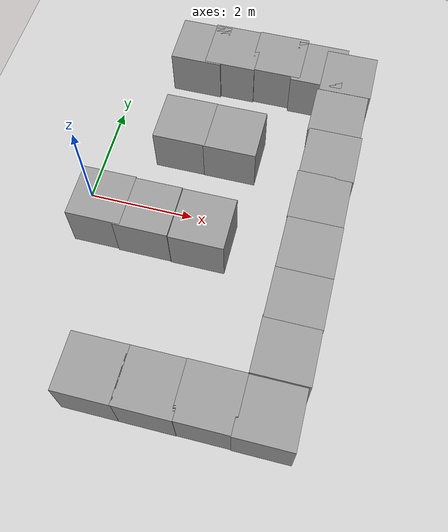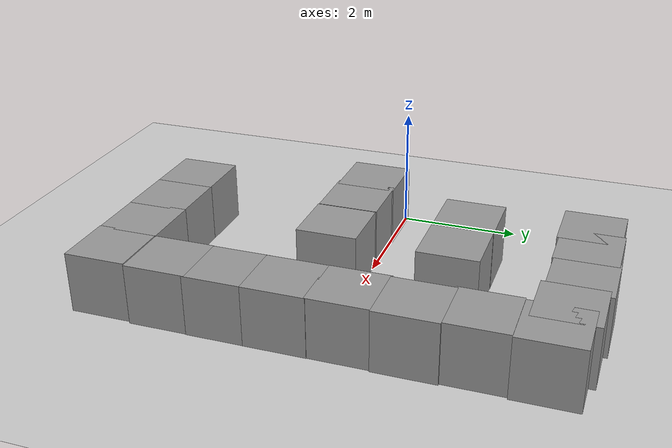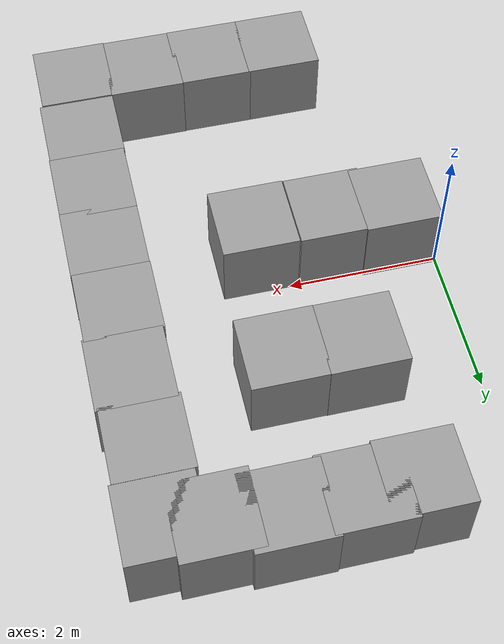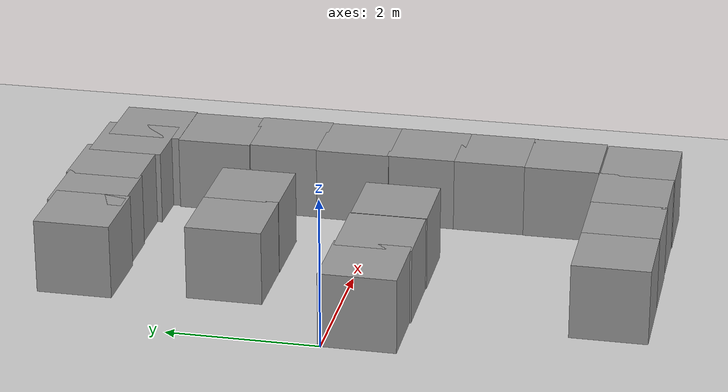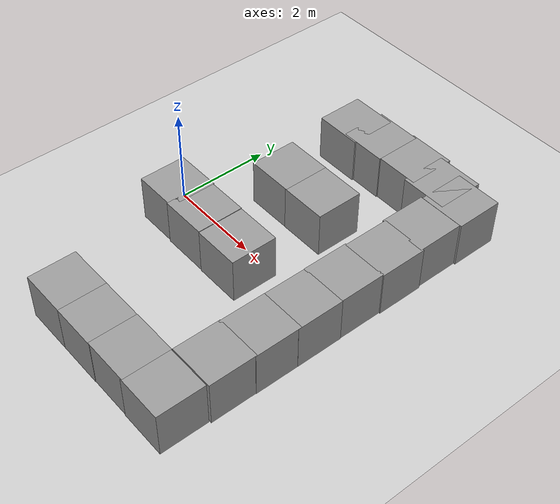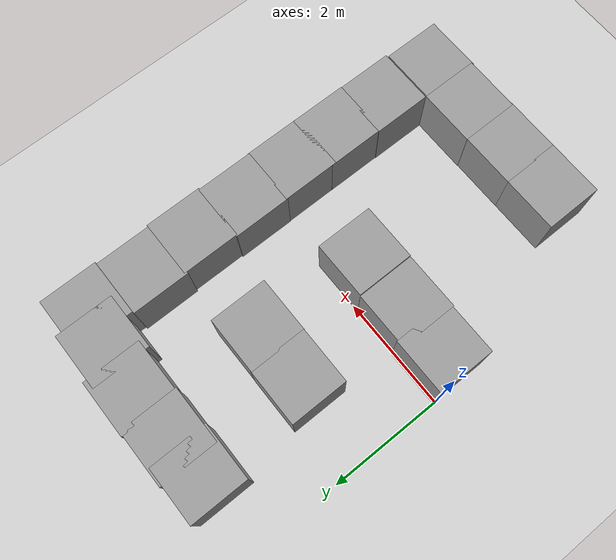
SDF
<sdf version="1.7">
 <world name="default">
  <model name="ground_plane">
   <static>1</static>
   <link name="link">
    <collision name="collision">
     <geometry><plane><normal>0 0 1</normal><size>100 100</size></plane></geometry>
     <surface><friction><ode><mu>100</mu><mu2>50</mu2></ode></friction></surface>
    </collision>
    <visual name="visual">
     <cast_shadows>0</cast_shadows>
     <geometry><plane><normal>0 0 1</normal><size>100 100</size></plane></geometry>
     <material>
      <script><uri>file://media/materials/scripts/gazebo.material</uri><name>Gazebo/Grey</name></script>
     </material>
    </visual>
   </link>
  </model>
  <model name="turtlebot3_world">
   <link name="link_4_clone_10">
    <inertial>
     <mass>1</mass>
     <inertia>
      <ixx>0.166667</ixx>
      <ixy>0</ixy>
      <ixz>0</ixz>
      <iyy>0.166667</iyy>
      <iyz>0</iyz>
      <izz>0.166667</izz>
     </inertia>
    </inertial>
    <pose>1.31695 3.4392 0.5 0 -0 0</pose>
    <visual name="visual">
     <geometry><box><size>1 1 1</size></box></geometry>
     <material>
      <lighting>1</lighting>
      <script><uri>file://media/materials/scripts/gazebo.material</uri><name>Gazebo/Grey</name></script>
      <shader type="pixel"/>
     </material>
    </visual>
    <collision name="collision">
     <geometry><box><size>1 1 1</size></box></geometry>
     <surface>
      <friction>
       <ode><mu>1</mu><mu2>1</mu2><fdir1>0 0 0</fdir1><slip1>0</slip1><slip2>0</slip2></ode>
       <torsional>
        <coefficient>1</coefficient>
        <patch_radius>0</patch_radius>
        <surface_radius>0</surface_radius>
        <use_patch_radius>1</use_patch_radius>
        <ode><slip>0</slip></ode>
       </torsional>
      </friction>
      <bounce><restitution_coefficient>0</restitution_coefficient><threshold>1e+06</threshold></bounce>
      <contact>
       <collide_without_contact>0</collide_without_contact>
       <collide_without_contact_bitmask>1</collide_without_contact_bitmask>
       <collide_bitmask>1</collide_bitmask>
       <ode>
        <soft_cfm>0</soft_cfm>
        <soft_erp>0.2</soft_erp>
        <kp>1e+13</kp>
        <kd>1</kd>
        <max_vel>0.01</max_vel>
        <min_depth>0</min_depth>
       </ode>
       <bullet>
        <split_impulse>1</split_impulse>
        <split_impulse_penetration_threshold>-0.01</split_impulse_penetration_threshold>
        <soft_cfm>0</soft_cfm>
        <soft_erp>0.2</soft_erp>
        <kp>1e+13</kp>
        <kd>1</kd>
       </bullet>
      </contact>
     </surface>
    </collision>
   </link>
   <link name="link_4_clone_11">
    <inertial>
     <mass>1</mass>
     <inertia>
      <ixx>0.166667</ixx>
      <ixy>0</ixy>
      <ixz>0</ixz>
      <iyy>0.166667</iyy>
      <iyz>0</iyz>
      <izz>0.166667</izz>
     </inertia>
    </inertial>
    <pose>2.00157 3.47266 0.5 0 -0 0</pose>
    <visual name="visual">
     <geometry><box><size>1 1 1</size></box></geometry>
     <material>
      <lighting>1</lighting>
      <script><uri>file://media/materials/scripts/gazebo.material</uri><name>Gazebo/Grey</name></script>
      <shader type="pixel"/>
     </material>
    </visual>
    <collision name="collision">
     <geometry><box><size>1 1 1</size></box></geometry>
     <surface>
      <friction>
       <ode><mu>1</mu><mu2>1</mu2><fdir1>0 0 0</fdir1><slip1>0</slip1><slip2>0</slip2></ode>
       <torsional>
        <coefficient>1</coefficient>
        <patch_radius>0</patch_radius>
        <surface_radius>0</surface_radius>
        <use_patch_radius>1</use_patch_radius>
        <ode><slip>0</slip></ode>
       </torsional>
      </friction>
      <bounce><restitution_coefficient>0</restitution_coefficient><threshold>1e+06</threshold></bounce>
      <contact>
       <collide_without_contact>0</collide_without_contact>
       <collide_without_contact_bitmask>1</collide_without_contact_bitmask>
       <collide_bitmask>1</collide_bitmask>
       <ode>
        <soft_cfm>0</soft_cfm>
        <soft_erp>0.2</soft_erp>
        <kp>1e+13</kp>
        <kd>1</kd>
        <max_vel>0.01</max_vel>
        <min_depth>0</min_depth>
       </ode>
       <bullet>
        <split_impulse>1</split_impulse>
        <split_impulse_penetration_threshold>-0.01</split_impulse_penetration_threshold>
        <soft_cfm>0</soft_cfm>
        <soft_erp>0.2</soft_erp>
        <kp>1e+13</kp>
        <kd>1</kd>
       </bullet>
      </contact>
     </surface>
    </collision>
   </link>
   <link name="link_4_clone_12">
    <inertial>
     <mass>1</mass>
     <inertia>
      <ixx>0.166667</ixx>
      <ixy>0</ixy>
      <ixz>0</ixz>
      <iyy>0.166667</iyy>
      <iyz>0</iyz>
      <izz>0.166667</izz>
     </inertia>
    </inertial>
    <pose>2.91323 3.4956 0.5 0 -0 0</pose>
    <visual name="visual">
     <geometry><box><size>1 1 1</size></box></geometry>
     <material>
      <lighting>1</lighting>
      <script><uri>file://media/materials/scripts/gazebo.material</uri><name>Gazebo/Grey</name></script>
      <shader type="pixel"/>
     </material>
    </visual>
    <collision name="collision">
     <geometry><box><size>1 1 1</size></box></geometry>
     <surface>
      <friction>
       <ode><mu>1</mu><mu2>1</mu2><fdir1>0 0 0</fdir1><slip1>0</slip1><slip2>0</slip2></ode>
       <torsional>
        <coefficient>1</coefficient>
        <patch_radius>0</patch_radius>
        <surface_radius>0</surface_radius>
        <use_patch_radius>1</use_patch_radius>
        <ode><slip>0</slip></ode>
       </torsional>
      </friction>
      <bounce><restitution_coefficient>0</restitution_coefficient><threshold>1e+06</threshold></bounce>
      <contact>
       <collide_without_contact>0</collide_without_contact>
       <collide_without_contact_bitmask>1</collide_without_contact_bitmask>
       <collide_bitmask>1</collide_bitmask>
       <ode>
        <soft_cfm>0</soft_cfm>
        <soft_erp>0.2</soft_erp>
        <kp>1e+13</kp>
        <kd>1</kd>
        <max_vel>0.01</max_vel>
        <min_depth>0</min_depth>
       </ode>
       <bullet>
        <split_impulse>1</split_impulse>
        <split_impulse_penetration_threshold>-0.01</split_impulse_penetration_threshold>
        <soft_cfm>0</soft_cfm>
        <soft_erp>0.2</soft_erp>
        <kp>1e+13</kp>
        <kd>1</kd>
       </bullet>
      </contact>
     </surface>
    </collision>
   </link>
   <link name="link_4_clone_17">
    <inertial>
     <mass>1</mass>
     <inertia>
      <ixx>0.166667</ixx>
      <ixy>0</ixy>
      <ixz>0</ixz>
      <iyy>0.166667</iyy>
      <iyz>0</iyz>
      <izz>0.166667</izz>
     </inertia>
    </inertial>
    <pose>1.36667 -3.48701 0.5 0 -0 0</pose>
    <visual name="visual">
     <geometry><box><size>1 1 1</size></box></geometry>
     <material>
      <lighting>1</lighting>
      <script><uri>file://media/materials/scripts/gazebo.material</uri><name>Gazebo/Grey</name></script>
      <shader type="pixel"/>
     </material>
    </visual>
    <collision name="collision">
     <geometry><box><size>1 1 1</size></box></geometry>
     <surface>
      <friction>
       <ode><mu>1</mu><mu2>1</mu2><fdir1>0 0 0</fdir1><slip1>0</slip1><slip2>0</slip2></ode>
       <torsional>
        <coefficient>1</coefficient>
        <patch_radius>0</patch_radius>
        <surface_radius>0</surface_radius>
        <use_patch_radius>1</use_patch_radius>
        <ode><slip>0</slip></ode>
       </torsional>
      </friction>
      <bounce><restitution_coefficient>0</restitution_coefficient><threshold>1e+06</threshold></bounce>
      <contact>
       <collide_without_contact>0</collide_without_contact>
       <collide_without_contact_bitmask>1</collide_without_contact_bitmask>
       <collide_bitmask>1</collide_bitmask>
       <ode>
        <soft_cfm>0</soft_cfm>
        <soft_erp>0.2</soft_erp>
        <kp>1e+13</kp>
        <kd>1</kd>
        <max_vel>0.01</max_vel>
        <min_depth>0</min_depth>
       </ode>
       <bullet>
        <split_impulse>1</split_impulse>
        <split_impulse_penetration_threshold>-0.01</split_impulse_penetration_threshold>
        <soft_cfm>0</soft_cfm>
        <soft_erp>0.2</soft_erp>
        <kp>1e+13</kp>
        <kd>1</kd>
       </bullet>
      </contact>
     </surface>
    </collision>
   </link>
   <link name="link_4_clone_18">
    <inertial>
     <mass>1</mass>
     <inertia>
      <ixx>0.166667</ixx>
      <ixy>0</ixy>
      <ixz>0</ixz>
      <iyy>0.166667</iyy>
      <iyz>0</iyz>
      <izz>0.166667</izz>
     </inertia>
    </inertial>
    <pose>2.34696 -3.48647 0.5 0 -0 0</pose>
    <visual name="visual">
     <geometry><box><size>1 1 1</size></box></geometry>
     <material>
      <lighting>1</lighting>
      <script><uri>file://media/materials/scripts/gazebo.material</uri><name>Gazebo/Grey</name></script>
      <shader type="pixel"/>
     </material>
    </visual>
    <collision name="collision">
     <geometry><box><size>1 1 1</size></box></geometry>
     <surface>
      <friction>
       <ode><mu>1</mu><mu2>1</mu2><fdir1>0 0 0</fdir1><slip1>0</slip1><slip2>0</slip2></ode>
       <torsional>
        <coefficient>1</coefficient>
        <patch_radius>0</patch_radius>
        <surface_radius>0</surface_radius>
        <use_patch_radius>1</use_patch_radius>
        <ode><slip>0</slip></ode>
       </torsional>
      </friction>
      <bounce><restitution_coefficient>0</restitution_coefficient><threshold>1e+06</threshold></bounce>
      <contact>
       <collide_without_contact>0</collide_without_contact>
       <collide_without_contact_bitmask>1</collide_without_contact_bitmask>
       <collide_bitmask>1</collide_bitmask>
       <ode>
        <soft_cfm>0</soft_cfm>
        <soft_erp>0.2</soft_erp>
        <kp>1e+13</kp>
        <kd>1</kd>
        <max_vel>0.01</max_vel>
        <min_depth>0</min_depth>
       </ode>
       <bullet>
        <split_impulse>1</split_impulse>
        <split_impulse_penetration_threshold>-0.01</split_impulse_penetration_threshold>
        <soft_cfm>0</soft_cfm>
        <soft_erp>0.2</soft_erp>
        <kp>1e+13</kp>
        <kd>1</kd>
       </bullet>
      </contact>
     </surface>
    </collision>
   </link>
   <link name="link_4_clone_19">
    <inertial>
     <mass>1</mass>
     <inertia>
      <ixx>0.166667</ixx>
      <ixy>0</ixy>
      <ixz>0</ixz>
      <iyy>0.166667</iyy>
      <iyz>0</iyz>
      <izz>0.166667</izz>
     </inertia>
    </inertial>
    <pose>3.30228 -3.48091 0.5 0 -0 0</pose>
    <visual name="visual">
     <geometry><box><size>1 1 1</size></box></geometry>
     <material>
      <lighting>1</lighting>
      <script><uri>file://media/materials/scripts/gazebo.material</uri><name>Gazebo/Grey</name></script>
      <shader type="pixel"/>
     </material>
    </visual>
    <collision name="collision">
     <geometry><box><size>1 1 1</size></box></geometry>
     <surface>
      <friction>
       <ode><mu>1</mu><mu2>1</mu2><fdir1>0 0 0</fdir1><slip1>0</slip1><slip2>0</slip2></ode>
       <torsional>
        <coefficient>1</coefficient>
        <patch_radius>0</patch_radius>
        <surface_radius>0</surface_radius>
        <use_patch_radius>1</use_patch_radius>
        <ode><slip>0</slip></ode>
       </torsional>
      </friction>
      <bounce><restitution_coefficient>0</restitution_coefficient><threshold>1e+06</threshold></bounce>
      <contact>
       <collide_without_contact>0</collide_without_contact>
       <collide_without_contact_bitmask>1</collide_without_contact_bitmask>
       <collide_bitmask>1</collide_bitmask>
       <ode>
        <soft_cfm>0</soft_cfm>
        <soft_erp>0.2</soft_erp>
        <kp>1e+13</kp>
        <kd>1</kd>
        <max_vel>0.01</max_vel>
        <min_depth>0</min_depth>
       </ode>
       <bullet>
        <split_impulse>1</split_impulse>
        <split_impulse_penetration_threshold>-0.01</split_impulse_penetration_threshold>
        <soft_cfm>0</soft_cfm>
        <soft_erp>0.2</soft_erp>
        <kp>1e+13</kp>
        <kd>1</kd>
       </bullet>
      </contact>
     </surface>
    </collision>
   </link>
   <link name="link_4_clone_20">
    <inertial>
     <mass>1</mass>
     <inertia>
      <ixx>0.166667</ixx>
      <ixy>0</ixy>
      <ixz>0</ixz>
      <iyy>0.166667</iyy>
      <iyz>0</iyz>
      <izz>0.166667</izz>
     </inertia>
    </inertial>
    <pose>4.26068 -3.49093 0.5 0 -0 0</pose>
    <visual name="visual">
     <geometry><box><size>1 1 1</size></box></geometry>
     <material>
      <lighting>1</lighting>
      <script><uri>file://media/materials/scripts/gazebo.material</uri><name>Gazebo/Grey</name></script>
      <shader type="pixel"/>
     </material>
    </visual>
    <collision name="collision">
     <geometry><box><size>1 1 1</size></box></geometry>
     <surface>
      <friction>
       <ode><mu>1</mu><mu2>1</mu2><fdir1>0 0 0</fdir1><slip1>0</slip1><slip2>0</slip2></ode>
       <torsional>
        <coefficient>1</coefficient>
        <patch_radius>0</patch_radius>
        <surface_radius>0</surface_radius>
        <use_patch_radius>1</use_patch_radius>
        <ode><slip>0</slip></ode>
       </torsional>
      </friction>
      <bounce><restitution_coefficient>0</restitution_coefficient><threshold>1e+06</threshold></bounce>
      <contact>
       <collide_without_contact>0</collide_without_contact>
       <collide_without_contact_bitmask>1</collide_without_contact_bitmask>
       <collide_bitmask>1</collide_bitmask>
       <ode>
        <soft_cfm>0</soft_cfm>
        <soft_erp>0.2</soft_erp>
        <kp>1e+13</kp>
        <kd>1</kd>
        <max_vel>0.01</max_vel>
        <min_depth>0</min_depth>
       </ode>
       <bullet>
        <split_impulse>1</split_impulse>
        <split_impulse_penetration_threshold>-0.01</split_impulse_penetration_threshold>
        <soft_cfm>0</soft_cfm>
        <soft_erp>0.2</soft_erp>
        <kp>1e+13</kp>
        <kd>1</kd>
       </bullet>
      </contact>
     </surface>
    </collision>
   </link>
   <link name="link_4_clone_21">
    <inertial>
     <mass>1</mass>
     <inertia>
      <ixx>0.166667</ixx>
      <ixy>0</ixy>
      <ixz>0</ixz>
      <iyy>0.166667</iyy>
      <iyz>0</iyz>
      <izz>0.166667</izz>
     </inertia>
    </inertial>
    <pose>4.29918 -2.47182 0.5 0 -0 0</pose>
    <visual name="visual">
     <geometry><box><size>1 1 1</size></box></geometry>
     <material>
      <lighting>1</lighting>
      <script><uri>file://media/materials/scripts/gazebo.material</uri><name>Gazebo/Grey</name></script>
      <shader type="pixel"/>
     </material>
    </visual>
    <collision name="collision">
     <geometry><box><size>1 1 1</size></box></geometry>
     <surface>
      <friction>
       <ode><mu>1</mu><mu2>1</mu2><fdir1>0 0 0</fdir1><slip1>0</slip1><slip2>0</slip2></ode>
       <torsional>
        <coefficient>1</coefficient>
        <patch_radius>0</patch_radius>
        <surface_radius>0</surface_radius>
        <use_patch_radius>1</use_patch_radius>
        <ode><slip>0</slip></ode>
       </torsional>
      </friction>
      <bounce><restitution_coefficient>0</restitution_coefficient><threshold>1e+06</threshold></bounce>
      <contact>
       <collide_without_contact>0</collide_without_contact>
       <collide_without_contact_bitmask>1</collide_without_contact_bitmask>
       <collide_bitmask>1</collide_bitmask>
       <ode>
        <soft_cfm>0</soft_cfm>
        <soft_erp>0.2</soft_erp>
        <kp>1e+13</kp>
        <kd>1</kd>
        <max_vel>0.01</max_vel>
        <min_depth>0</min_depth>
       </ode>
       <bullet>
        <split_impulse>1</split_impulse>
        <split_impulse_penetration_threshold>-0.01</split_impulse_penetration_threshold>
        <soft_cfm>0</soft_cfm>
        <soft_erp>0.2</soft_erp>
        <kp>1e+13</kp>
        <kd>1</kd>
       </bullet>
      </contact>
     </surface>
    </collision>
   </link>
   <link name="link_4_clone_22">
    <inertial>
     <mass>1</mass>
     <inertia>
      <ixx>0.166667</ixx>
      <ixy>0</ixy>
      <ixz>0</ixz>
      <iyy>0.166667</iyy>
      <iyz>0</iyz>
      <izz>0.166667</izz>
     </inertia>
    </inertial>
    <pose>4.3084 -1.51402 0.5 0 -0 0</pose>
    <visual name="visual">
     <geometry><box><size>1 1 1</size></box></geometry>
     <material>
      <lighting>1</lighting>
      <script><uri>file://media/materials/scripts/gazebo.material</uri><name>Gazebo/Grey</name></script>
      <shader type="pixel"/>
     </material>
    </visual>
    <collision name="collision">
     <geometry><box><size>1 1 1</size></box></geometry>
     <surface>
      <friction>
       <ode><mu>1</mu><mu2>1</mu2><fdir1>0 0 0</fdir1><slip1>0</slip1><slip2>0</slip2></ode>
       <torsional>
        <coefficient>1</coefficient>
        <patch_radius>0</patch_radius>
        <surface_radius>0</surface_radius>
        <use_patch_radius>1</use_patch_radius>
        <ode><slip>0</slip></ode>
       </torsional>
      </friction>
      <bounce><restitution_coefficient>0</restitution_coefficient><threshold>1e+06</threshold></bounce>
      <contact>
       <collide_without_contact>0</collide_without_contact>
       <collide_without_contact_bitmask>1</collide_without_contact_bitmask>
       <collide_bitmask>1</collide_bitmask>
       <ode>
        <soft_cfm>0</soft_cfm>
        <soft_erp>0.2</soft_erp>
        <kp>1e+13</kp>
        <kd>1</kd>
        <max_vel>0.01</max_vel>
        <min_depth>0</min_depth>
       </ode>
       <bullet>
        <split_impulse>1</split_impulse>
        <split_impulse_penetration_threshold>-0.01</split_impulse_penetration_threshold>
        <soft_cfm>0</soft_cfm>
        <soft_erp>0.2</soft_erp>
        <kp>1e+13</kp>
        <kd>1</kd>
       </bullet>
      </contact>
     </surface>
    </collision>
   </link>
   <link name="link_4_clone_23">
    <inertial>
     <mass>1</mass>
     <inertia>
      <ixx>0.166667</ixx>
      <ixy>0</ixy>
      <ixz>0</ixz>
      <iyy>0.166667</iyy>
      <iyz>0</iyz>
      <izz>0.166667</izz>
     </inertia>
    </inertial>
    <pose>4.31032 -0.590382 0.5 0 -0 0</pose>
    <visual name="visual">
     <geometry><box><size>1 1 1</size></box></geometry>
     <material>
      <lighting>1</lighting>
      <script><uri>file://media/materials/scripts/gazebo.material</uri><name>Gazebo/Grey</name></script>
      <shader type="pixel"/>
     </material>
    </visual>
    <collision name="collision">
     <geometry><box><size>1 1 1</size></box></geometry>
     <surface>
      <friction>
       <ode><mu>1</mu><mu2>1</mu2><fdir1>0 0 0</fdir1><slip1>0</slip1><slip2>0</slip2></ode>
       <torsional>
        <coefficient>1</coefficient>
        <patch_radius>0</patch_radius>
        <surface_radius>0</surface_radius>
        <use_patch_radius>1</use_patch_radius>
        <ode><slip>0</slip></ode>
       </torsional>
      </friction>
      <bounce><restitution_coefficient>0</restitution_coefficient><threshold>1e+06</threshold></bounce>
      <contact>
       <collide_without_contact>0</collide_without_contact>
       <collide_without_contact_bitmask>1</collide_without_contact_bitmask>
       <collide_bitmask>1</collide_bitmask>
       <ode>
        <soft_cfm>0</soft_cfm>
        <soft_erp>0.2</soft_erp>
        <kp>1e+13</kp>
        <kd>1</kd>
        <max_vel>0.01</max_vel>
        <min_depth>0</min_depth>
       </ode>
       <bullet>
        <split_impulse>1</split_impulse>
        <split_impulse_penetration_threshold>-0.01</split_impulse_penetration_threshold>
        <soft_cfm>0</soft_cfm>
        <soft_erp>0.2</soft_erp>
        <kp>1e+13</kp>
        <kd>1</kd>
       </bullet>
      </contact>
     </surface>
    </collision>
   </link>
   <link name="link_4_clone_24">
    <inertial>
     <mass>1</mass>
     <inertia>
      <ixx>0.166667</ixx>
      <ixy>0</ixy>
      <ixz>0</ixz>
      <iyy>0.166667</iyy>
      <iyz>0</iyz>
      <izz>0.166667</izz>
     </inertia>
    </inertial>
    <pose>4.30342 0.387083 0.5 0 -0 0</pose>
    <visual name="visual">
     <geometry><box><size>1 1 1</size></box></geometry>
     <material>
      <lighting>1</lighting>
      <script><uri>file://media/materials/scripts/gazebo.material</uri><name>Gazebo/Grey</name></script>
      <shader type="pixel"/>
     </material>
    </visual>
    <collision name="collision">
     <geometry><box><size>1 1 1</size></box></geometry>
     <surface>
      <friction>
       <ode><mu>1</mu><mu2>1</mu2><fdir1>0 0 0</fdir1><slip1>0</slip1><slip2>0</slip2></ode>
       <torsional>
        <coefficient>1</coefficient>
        <patch_radius>0</patch_radius>
        <surface_radius>0</surface_radius>
        <use_patch_radius>1</use_patch_radius>
        <ode><slip>0</slip></ode>
       </torsional>
      </friction>
      <bounce><restitution_coefficient>0</restitution_coefficient><threshold>1e+06</threshold></bounce>
      <contact>
       <collide_without_contact>0</collide_without_contact>
       <collide_without_contact_bitmask>1</collide_without_contact_bitmask>
       <collide_bitmask>1</collide_bitmask>
       <ode>
        <soft_cfm>0</soft_cfm>
        <soft_erp>0.2</soft_erp>
        <kp>1e+13</kp>
        <kd>1</kd>
        <max_vel>0.01</max_vel>
        <min_depth>0</min_depth>
       </ode>
       <bullet>
        <split_impulse>1</split_impulse>
        <split_impulse_penetration_threshold>-0.01</split_impulse_penetration_threshold>
        <soft_cfm>0</soft_cfm>
        <soft_erp>0.2</soft_erp>
        <kp>1e+13</kp>
        <kd>1</kd>
       </bullet>
      </contact>
     </surface>
    </collision>
   </link>
   <link name="link_4_clone_25">
    <inertial>
     <mass>1</mass>
     <inertia>
      <ixx>0.166667</ixx>
      <ixy>0</ixy>
      <ixz>0</ixz>
      <iyy>0.166667</iyy>
      <iyz>0</iyz>
      <izz>0.166667</izz>
     </inertia>
    </inertial>
    <pose>4.32632 1.36261 0.5 0 -0 0</pose>
    <visual name="visual">
     <geometry><box><size>1 1 1</size></box></geometry>
     <material>
      <lighting>1</lighting>
      <script><uri>file://media/materials/scripts/gazebo.material</uri><name>Gazebo/Grey</name></script>
      <shader type="pixel"/>
     </material>
    </visual>
    <collision name="collision">
     <geometry><box><size>1 1 1</size></box></geometry>
     <surface>
      <friction>
       <ode><mu>1</mu><mu2>1</mu2><fdir1>0 0 0</fdir1><slip1>0</slip1><slip2>0</slip2></ode>
       <torsional>
        <coefficient>1</coefficient>
        <patch_radius>0</patch_radius>
        <surface_radius>0</surface_radius>
        <use_patch_radius>1</use_patch_radius>
        <ode><slip>0</slip></ode>
       </torsional>
      </friction>
      <bounce><restitution_coefficient>0</restitution_coefficient><threshold>1e+06</threshold></bounce>
      <contact>
       <collide_without_contact>0</collide_without_contact>
       <collide_without_contact_bitmask>1</collide_without_contact_bitmask>
       <collide_bitmask>1</collide_bitmask>
       <ode>
        <soft_cfm>0</soft_cfm>
        <soft_erp>0.2</soft_erp>
        <kp>1e+13</kp>
        <kd>1</kd>
        <max_vel>0.01</max_vel>
        <min_depth>0</min_depth>
       </ode>
       <bullet>
        <split_impulse>1</split_impulse>
        <split_impulse_penetration_threshold>-0.01</split_impulse_penetration_threshold>
        <soft_cfm>0</soft_cfm>
        <soft_erp>0.2</soft_erp>
        <kp>1e+13</kp>
        <kd>1</kd>
       </bullet>
      </contact>
     </surface>
    </collision>
   </link>
   <link name="link_4_clone_26">
    <inertial>
     <mass>1</mass>
     <inertia>
      <ixx>0.166667</ixx>
      <ixy>0</ixy>
      <ixz>0</ixz>
      <iyy>0.166667</iyy>
      <iyz>0</iyz>
      <izz>0.166667</izz>
     </inertia>
    </inertial>
    <pose>4.29655 2.31945 0.5 0 -0 0</pose>
    <visual name="visual">
     <geometry><box><size>1 1 1</size></box></geometry>
     <material>
      <lighting>1</lighting>
      <script><uri>file://media/materials/scripts/gazebo.material</uri><name>Gazebo/Grey</name></script>
      <shader type="pixel"/>
     </material>
    </visual>
    <collision name="collision">
     <geometry><box><size>1 1 1</size></box></geometry>
     <surface>
      <friction>
       <ode><mu>1</mu><mu2>1</mu2><fdir1>0 0 0</fdir1><slip1>0</slip1><slip2>0</slip2></ode>
       <torsional>
        <coefficient>1</coefficient>
        <patch_radius>0</patch_radius>
        <surface_radius>0</surface_radius>
        <use_patch_radius>1</use_patch_radius>
        <ode><slip>0</slip></ode>
       </torsional>
      </friction>
      <bounce><restitution_coefficient>0</restitution_coefficient><threshold>1e+06</threshold></bounce>
      <contact>
       <collide_without_contact>0</collide_without_contact>
       <collide_without_contact_bitmask>1</collide_without_contact_bitmask>
       <collide_bitmask>1</collide_bitmask>
       <ode>
        <soft_cfm>0</soft_cfm>
        <soft_erp>0.2</soft_erp>
        <kp>1e+13</kp>
        <kd>1</kd>
        <max_vel>0.01</max_vel>
        <min_depth>0</min_depth>
       </ode>
       <bullet>
        <split_impulse>1</split_impulse>
        <split_impulse_penetration_threshold>-0.01</split_impulse_penetration_threshold>
        <soft_cfm>0</soft_cfm>
        <soft_erp>0.2</soft_erp>
        <kp>1e+13</kp>
        <kd>1</kd>
       </bullet>
      </contact>
     </surface>
    </collision>
   </link>
   <link name="link_4_clone_27">
    <inertial>
     <mass>1</mass>
     <inertia>
      <ixx>0.166667</ixx>
      <ixy>0</ixy>
      <ixz>0</ixz>
      <iyy>0.166667</iyy>
      <iyz>0</iyz>
      <izz>0.166667</izz>
     </inertia>
    </inertial>
    <pose>4.33093 3.32099 0.5 0 -0 0</pose>
    <visual name="visual">
     <geometry><box><size>1 1 1</size></box></geometry>
     <material>
      <lighting>1</lighting>
      <script><uri>file://media/materials/scripts/gazebo.material</uri><name>Gazebo/Grey</name></script>
      <shader type="pixel"/>
     </material>
    </visual>
    <collision name="collision">
     <geometry><box><size>1 1 1</size></box></geometry>
     <surface>
      <friction>
       <ode><mu>1</mu><mu2>1</mu2><fdir1>0 0 0</fdir1><slip1>0</slip1><slip2>0</slip2></ode>
       <torsional>
        <coefficient>1</coefficient>
        <patch_radius>0</patch_radius>
        <surface_radius>0</surface_radius>
        <use_patch_radius>1</use_patch_radius>
        <ode><slip>0</slip></ode>
       </torsional>
      </friction>
      <bounce><restitution_coefficient>0</restitution_coefficient><threshold>1e+06</threshold></bounce>
      <contact>
       <collide_without_contact>0</collide_without_contact>
       <collide_without_contact_bitmask>1</collide_without_contact_bitmask>
       <collide_bitmask>1</collide_bitmask>
       <ode>
        <soft_cfm>0</soft_cfm>
        <soft_erp>0.2</soft_erp>
        <kp>1e+13</kp>
        <kd>1</kd>
        <max_vel>0.01</max_vel>
        <min_depth>0</min_depth>
       </ode>
       <bullet>
        <split_impulse>1</split_impulse>
        <split_impulse_penetration_threshold>-0.01</split_impulse_penetration_threshold>
        <soft_cfm>0</soft_cfm>
        <soft_erp>0.2</soft_erp>
        <kp>1e+13</kp>
        <kd>1</kd>
       </bullet>
      </contact>
     </surface>
    </collision>
   </link>
   <link name="link_4_clone_28">
    <inertial>
     <mass>1</mass>
     <inertia>
      <ixx>0.166667</ixx>
      <ixy>0</ixy>
      <ixz>0</ixz>
      <iyy>0.166667</iyy>
      <iyz>0</iyz>
      <izz>0.166667</izz>
     </inertia>
    </inertial>
    <pose>3.74082 3.42766 0.5 0 -0 0</pose>
    <visual name="visual">
     <geometry><box><size>1 1 1</size></box></geometry>
     <material>
      <lighting>1</lighting>
      <script><uri>file://media/materials/scripts/gazebo.material</uri><name>Gazebo/Grey</name></script>
      <shader type="pixel"/>
     </material>
    </visual>
    <collision name="collision">
     <geometry><box><size>1 1 1</size></box></geometry>
     <surface>
      <friction>
       <ode><mu>1</mu><mu2>1</mu2><fdir1>0 0 0</fdir1><slip1>0</slip1><slip2>0</slip2></ode>
       <torsional>
        <coefficient>1</coefficient>
        <patch_radius>0</patch_radius>
        <surface_radius>0</surface_radius>
        <use_patch_radius>1</use_patch_radius>
        <ode><slip>0</slip></ode>
       </torsional>
      </friction>
      <bounce><restitution_coefficient>0</restitution_coefficient><threshold>1e+06</threshold></bounce>
      <contact>
       <collide_without_contact>0</collide_without_contact>
       <collide_without_contact_bitmask>1</collide_without_contact_bitmask>
       <collide_bitmask>1</collide_bitmask>
       <ode>
        <soft_cfm>0</soft_cfm>
        <soft_erp>0.2</soft_erp>
        <kp>1e+13</kp>
        <kd>1</kd>
        <max_vel>0.01</max_vel>
        <min_depth>0</min_depth>
       </ode>
       <bullet>
        <split_impulse>1</split_impulse>
        <split_impulse_penetration_threshold>-0.01</split_impulse_penetration_threshold>
        <soft_cfm>0</soft_cfm>
        <soft_erp>0.2</soft_erp>
        <kp>1e+13</kp>
        <kd>1</kd>
       </bullet>
      </contact>
     </surface>
    </collision>
   </link>
   <link name="link_4_clone_34">
    <inertial>
     <mass>1</mass>
     <inertia>
      <ixx>0.166667</ixx>
      <ixy>0</ixy>
      <ixz>0</ixz>
      <iyy>0.166667</iyy>
      <iyz>0</iyz>
      <izz>0.166667</izz>
     </inertia>
    </inertial>
    <pose>0.504855 -0.462185 0.5 0 -0 0</pose>
    <visual name="visual">
     <geometry><box><size>1 1 1</size></box></geometry>
     <material>
      <lighting>1</lighting>
      <script><uri>file://media/materials/scripts/gazebo.material</uri><name>Gazebo/Grey</name></script>
      <shader type="pixel"/>
     </material>
    </visual>
    <collision name="collision">
     <geometry><box><size>1 1 1</size></box></geometry>
     <surface>
      <friction>
       <ode><mu>1</mu><mu2>1</mu2><fdir1>0 0 0</fdir1><slip1>0</slip1><slip2>0</slip2></ode>
       <torsional>
        <coefficient>1</coefficient>
        <patch_radius>0</patch_radius>
        <surface_radius>0</surface_radius>
        <use_patch_radius>1</use_patch_radius>
        <ode><slip>0</slip></ode>
       </torsional>
      </friction>
      <bounce><restitution_coefficient>0</restitution_coefficient><threshold>1e+06</threshold></bounce>
      <contact>
       <collide_without_contact>0</collide_without_contact>
       <collide_without_contact_bitmask>1</collide_without_contact_bitmask>
       <collide_bitmask>1</collide_bitmask>
       <ode>
        <soft_cfm>0</soft_cfm>
        <soft_erp>0.2</soft_erp>
        <kp>1e+13</kp>
        <kd>1</kd>
        <max_vel>0.01</max_vel>
        <min_depth>0</min_depth>
       </ode>
       <bullet>
        <split_impulse>1</split_impulse>
        <split_impulse_penetration_threshold>-0.01</split_impulse_penetration_threshold>
        <soft_cfm>0</soft_cfm>
        <soft_erp>0.2</soft_erp>
        <kp>1e+13</kp>
        <kd>1</kd>
       </bullet>
      </contact>
     </surface>
    </collision>
   </link>
   <link name="link_4_clone_35">
    <inertial>
     <mass>1</mass>
     <inertia>
      <ixx>0.166667</ixx>
      <ixy>0</ixy>
      <ixz>0</ixz>
      <iyy>0.166667</iyy>
      <iyz>0</iyz>
      <izz>0.166667</izz>
     </inertia>
    </inertial>
    <pose>1.37565 -0.48214 0.5 0 -0 0</pose>
    <visual name="visual">
     <geometry><box><size>1 1 1</size></box></geometry>
     <material>
      <lighting>1</lighting>
      <script><uri>file://media/materials/scripts/gazebo.material</uri><name>Gazebo/Grey</name></script>
      <shader type="pixel"/>
     </material>
    </visual>
    <collision name="collision">
     <geometry><box><size>1 1 1</size></box></geometry>
     <surface>
      <friction>
       <ode><mu>1</mu><mu2>1</mu2><fdir1>0 0 0</fdir1><slip1>0</slip1><slip2>0</slip2></ode>
       <torsional>
        <coefficient>1</coefficient>
        <patch_radius>0</patch_radius>
        <surface_radius>0</surface_radius>
        <use_patch_radius>1</use_patch_radius>
        <ode><slip>0</slip></ode>
       </torsional>
      </friction>
      <bounce><restitution_coefficient>0</restitution_coefficient><threshold>1e+06</threshold></bounce>
      <contact>
       <collide_without_contact>0</collide_without_contact>
       <collide_without_contact_bitmask>1</collide_without_contact_bitmask>
       <collide_bitmask>1</collide_bitmask>
       <ode>
        <soft_cfm>0</soft_cfm>
        <soft_erp>0.2</soft_erp>
        <kp>1e+13</kp>
        <kd>1</kd>
        <max_vel>0.01</max_vel>
        <min_depth>0</min_depth>
       </ode>
       <bullet>
        <split_impulse>1</split_impulse>
        <split_impulse_penetration_threshold>-0.01</split_impulse_penetration_threshold>
        <soft_cfm>0</soft_cfm>
        <soft_erp>0.2</soft_erp>
        <kp>1e+13</kp>
        <kd>1</kd>
       </bullet>
      </contact>
     </surface>
    </collision>
   </link>
   <link name="link_4_clone_36">
    <inertial>
     <mass>1</mass>
     <inertia>
      <ixx>0.166667</ixx>
      <ixy>0</ixy>
      <ixz>0</ixz>
      <iyy>0.166667</iyy>
      <iyz>0</iyz>
      <izz>0.166667</izz>
     </inertia>
    </inertial>
    <pose>2.38811 -0.493615 0.5 0 -0 0</pose>
    <visual name="visual">
     <geometry><box><size>1 1 1</size></box></geometry>
     <material>
      <lighting>1</lighting>
      <script><uri>file://media/materials/scripts/gazebo.material</uri><name>Gazebo/Grey</name></script>
      <shader type="pixel"/>
     </material>
    </visual>
    <collision name="collision">
     <geometry><box><size>1 1 1</size></box></geometry>
     <surface>
      <friction>
       <ode><mu>1</mu><mu2>1</mu2><fdir1>0 0 0</fdir1><slip1>0</slip1><slip2>0</slip2></ode>
       <torsional>
        <coefficient>1</coefficient>
        <patch_radius>0</patch_radius>
        <surface_radius>0</surface_radius>
        <use_patch_radius>1</use_patch_radius>
        <ode><slip>0</slip></ode>
       </torsional>
      </friction>
      <bounce><restitution_coefficient>0</restitution_coefficient><threshold>1e+06</threshold></bounce>
      <contact>
       <collide_without_contact>0</collide_without_contact>
       <collide_without_contact_bitmask>1</collide_without_contact_bitmask>
       <collide_bitmask>1</collide_bitmask>
       <ode>
        <soft_cfm>0</soft_cfm>
        <soft_erp>0.2</soft_erp>
        <kp>1e+13</kp>
        <kd>1</kd>
        <max_vel>0.01</max_vel>
        <min_depth>0</min_depth>
       </ode>
       <bullet>
        <split_impulse>1</split_impulse>
        <split_impulse_penetration_threshold>-0.01</split_impulse_penetration_threshold>
        <soft_cfm>0</soft_cfm>
        <soft_erp>0.2</soft_erp>
        <kp>1e+13</kp>
        <kd>1</kd>
       </bullet>
      </contact>
     </surface>
    </collision>
   </link>
   <link name="link_4_clone_37">
    <inertial>
     <mass>1</mass>
     <inertia>
      <ixx>0.166667</ixx>
      <ixy>0</ixy>
      <ixz>0</ixz>
      <iyy>0.166667</iyy>
      <iyz>0</iyz>
      <izz>0.166667</izz>
     </inertia>
    </inertial>
    <pose>2.48675 1.4876 0.5 0 -0 0</pose>
    <visual name="visual">
     <geometry><box><size>1 1 1</size></box></geometry>
     <material>
      <lighting>1</lighting>
      <script><uri>file://media/materials/scripts/gazebo.material</uri><name>Gazebo/Grey</name></script>
      <shader type="pixel"/>
     </material>
    </visual>
    <collision name="collision">
     <geometry><box><size>1 1 1</size></box></geometry>
     <surface>
      <friction>
       <ode><mu>1</mu><mu2>1</mu2><fdir1>0 0 0</fdir1><slip1>0</slip1><slip2>0</slip2></ode>
       <torsional>
        <coefficient>1</coefficient>
        <patch_radius>0</patch_radius>
        <surface_radius>0</surface_radius>
        <use_patch_radius>1</use_patch_radius>
        <ode><slip>0</slip></ode>
       </torsional>
      </friction>
      <bounce><restitution_coefficient>0</restitution_coefficient><threshold>1e+06</threshold></bounce>
      <contact>
       <collide_without_contact>0</collide_without_contact>
       <collide_without_contact_bitmask>1</collide_without_contact_bitmask>
       <collide_bitmask>1</collide_bitmask>
       <ode>
        <soft_cfm>0</soft_cfm>
        <soft_erp>0.2</soft_erp>
        <kp>1e+13</kp>
        <kd>1</kd>
        <max_vel>0.01</max_vel>
        <min_depth>0</min_depth>
       </ode>
       <bullet>
        <split_impulse>1</split_impulse>
        <split_impulse_penetration_threshold>-0.01</split_impulse_penetration_threshold>
        <soft_cfm>0</soft_cfm>
        <soft_erp>0.2</soft_erp>
        <kp>1e+13</kp>
        <kd>1</kd>
       </bullet>
      </contact>
     </surface>
    </collision>
   </link>
   <link name="link_4_clone_38">
    <inertial>
     <mass>1</mass>
     <inertia>
      <ixx>0.166667</ixx>
      <ixy>0</ixy>
      <ixz>0</ixz>
      <iyy>0.166667</iyy>
      <iyz>0</iyz>
      <izz>0.166667</izz>
     </inertia>
    </inertial>
    <pose>1.51437 1.49175 0.5 0 -0 0</pose>
    <visual name="visual">
     <geometry><box><size>1 1 1</size></box></geometry>
     <material>
      <lighting>1</lighting>
      <script><uri>file://media/materials/scripts/gazebo.material</uri><name>Gazebo/Grey</name></script>
      <shader type="pixel"/>
     </material>
    </visual>
    <collision name="collision">
     <geometry><box><size>1 1 1</size></box></geometry>
     <surface>
      <friction>
       <ode><mu>1</mu><mu2>1</mu2><fdir1>0 0 0</fdir1><slip1>0</slip1><slip2>0</slip2></ode>
       <torsional>
        <coefficient>1</coefficient>
        <patch_radius>0</patch_radius>
        <surface_radius>0</surface_radius>
        <use_patch_radius>1</use_patch_radius>
        <ode><slip>0</slip></ode>
       </torsional>
      </friction>
      <bounce><restitution_coefficient>0</restitution_coefficient><threshold>1e+06</threshold></bounce>
      <contact>
       <collide_without_contact>0</collide_without_contact>
       <collide_without_contact_bitmask>1</collide_without_contact_bitmask>
       <collide_bitmask>1</collide_bitmask>
       <ode>
        <soft_cfm>0</soft_cfm>
        <soft_erp>0.2</soft_erp>
        <kp>1e+13</kp>
        <kd>1</kd>
        <max_vel>0.01</max_vel>
        <min_depth>0</min_depth>
       </ode>
       <bullet>
        <split_impulse>1</split_impulse>
        <split_impulse_penetration_threshold>-0.01</split_impulse_penetration_threshold>
        <soft_cfm>0</soft_cfm>
        <soft_erp>0.2</soft_erp>
        <kp>1e+13</kp>
        <kd>1</kd>
       </bullet>
      </contact>
     </surface>
    </collision>
   </link>
   <static>1</static>
  </model>
 </world>
</sdf>
